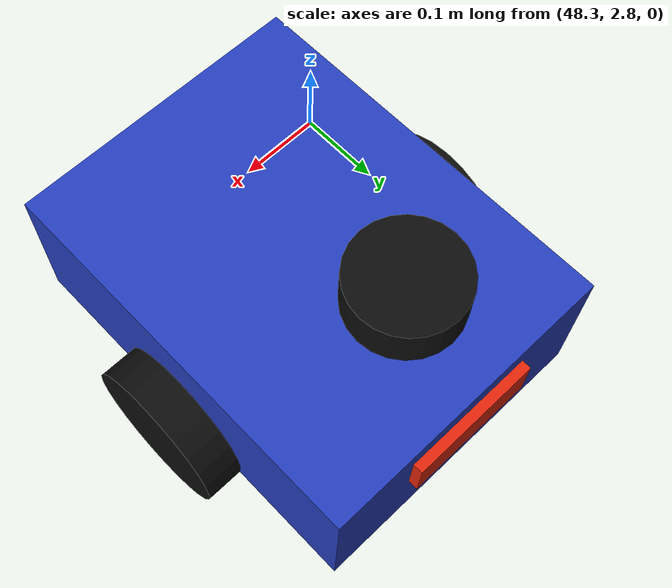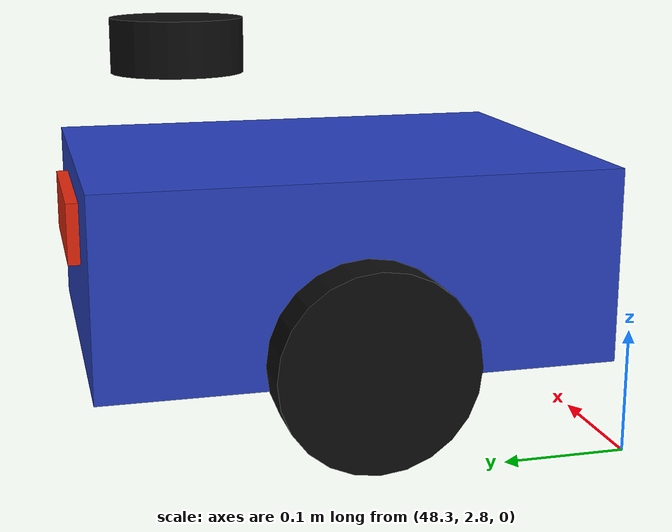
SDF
<sdf version="1.8">
 <world name="osco_scenario_world">
  <include><uri>model://fire_robot</uri><name>robot1</name><pose>48.5000 3.0000 0.0 0 0 1.5708</pose></include>
 </world>
</sdf>
